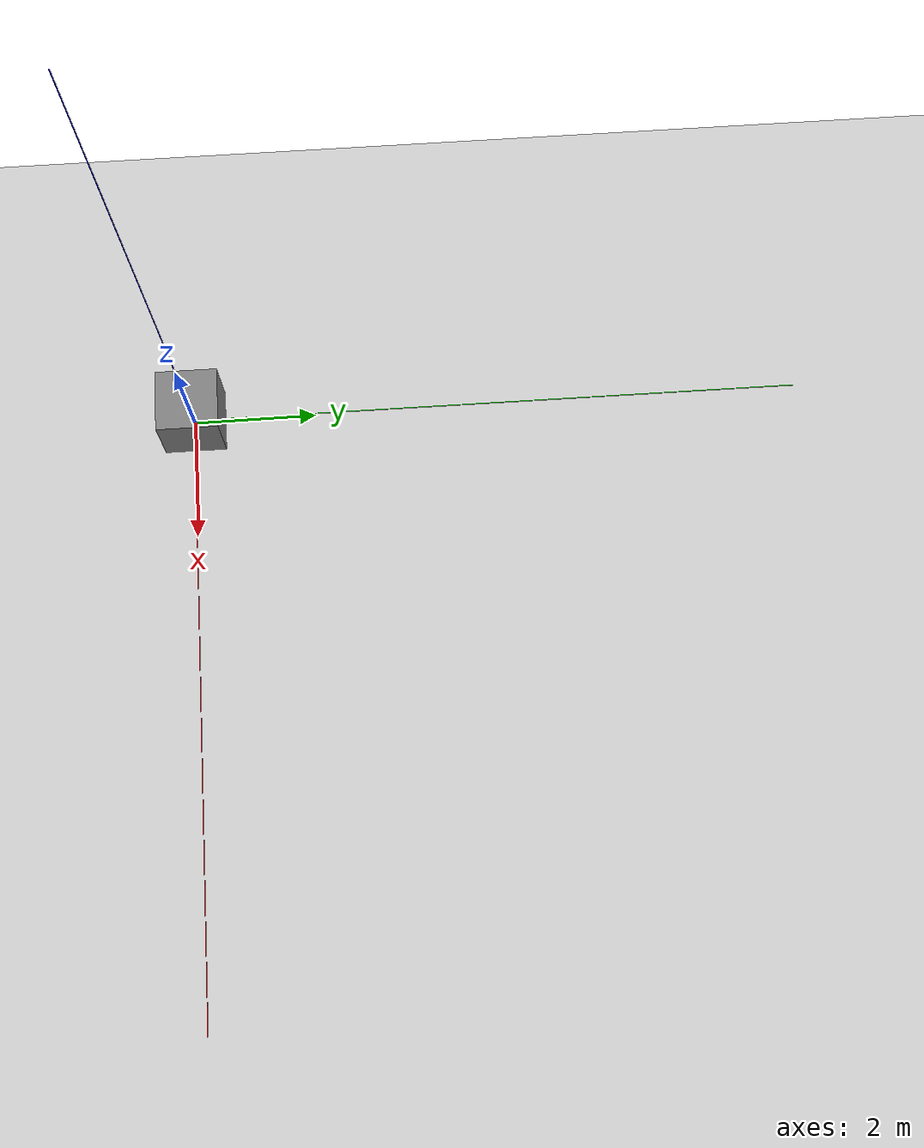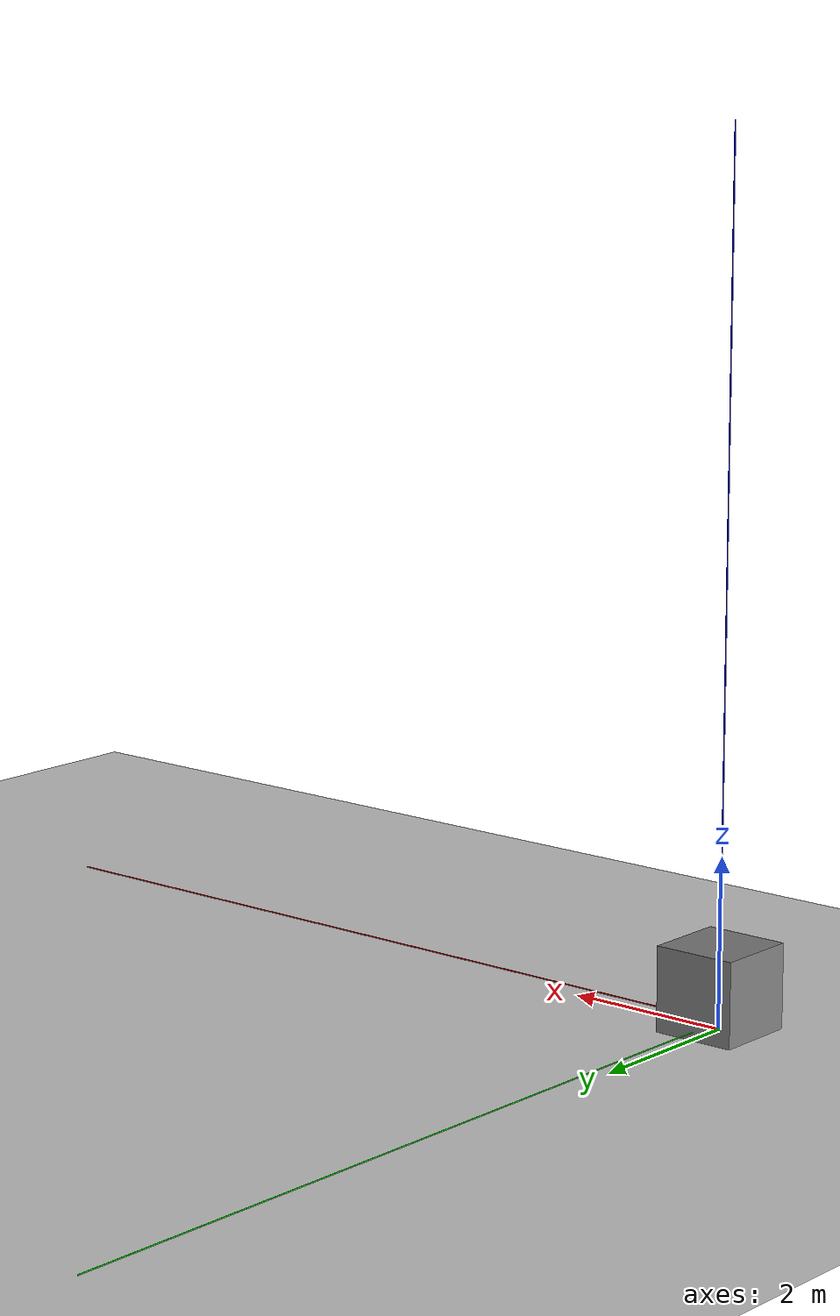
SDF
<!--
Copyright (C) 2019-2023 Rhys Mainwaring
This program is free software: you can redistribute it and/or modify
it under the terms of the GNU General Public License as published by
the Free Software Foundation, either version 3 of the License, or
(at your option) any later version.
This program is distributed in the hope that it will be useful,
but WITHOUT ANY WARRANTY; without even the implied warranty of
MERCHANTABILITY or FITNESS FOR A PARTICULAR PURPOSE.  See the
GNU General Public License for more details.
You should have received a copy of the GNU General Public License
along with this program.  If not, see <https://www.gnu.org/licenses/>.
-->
<?xml version="1.0" ?>
<sdf version="1.6">
  <world name="wind">

    <physics name="1ms" type="ignored">
      <max_step_size>0.001</max_step_size>
      <real_time_factor>1</real_time_factor>
    </physics>

    <plugin filename="gz-sim-physics-system"
        name="gz::sim::systems::Physics">
    </plugin>
    <plugin filename="gz-sim-sensors-system"
        name="gz::sim::systems::Sensors">
      <render_engine>ogre2</render_engine>
      <background_color>0.8 0.8 0.8</background_color>
    </plugin>
    <plugin filename="gz-sim-scene-broadcaster-system"
        name="gz::sim::systems::SceneBroadcaster">
    </plugin>
    <plugin filename="gz-sim-user-commands-system"
        name="gz::sim::systems::UserCommands">
    </plugin>
    <plugin filename="gz-sim-imu-system"
        name="gz::sim::systems::Imu">
    </plugin>
    <plugin filename="asv_sim2-anemometer-system"
      name="gz::sim::systems::Anemometer">
    </plugin>
    <plugin filename="asv_sim2-wind-system"
      name="gz::sim::systems::Wind">
      <topic>/wind</topic>
    </plugin>

    <scene>
      <ambient>1.0 1.0 1.0</ambient>
      <background>0.8 0.8 0.8</background>
      <sky></sky>
    </scene>

    <spherical_coordinates>
      <latitude_deg>51.56991349023042</latitude_deg>
      <longitude_deg>-4.033693921107272</longitude_deg>
      <elevation>10.0</elevation>
      <heading_deg>0</heading_deg>
      <surface_model>EARTH_WGS84</surface_model>
    </spherical_coordinates>

    <light type="directional" name="sun">
      <cast_shadows>true</cast_shadows>
      <pose>0 0 10 0 0 0</pose>
      <diffuse>0.8 0.8 0.8 1</diffuse>
      <specular>0.6 0.6 0.6 1</specular>
      <direction>-0.5 0.1 -0.9</direction>
    </light>

    <wind>
      <linear_velocity>0 -10 0</linear_velocity>
    </wind>

    <model name="axes">
      <static>1</static>
      <link name="link">
        <visual name="r">
          <cast_shadows>0</cast_shadows>
          <pose>5 0 0.1 0 0 0</pose>
          <geometry>
            <box>
              <size>10 0.01 0.01</size>
            </box>
          </geometry>
          <material>
            <ambient>1 0 0 1</ambient>
            <diffuse>1 0 0 1</diffuse>
            <emissive>1 0 0 1</emissive>
            <specular>0.5 0.5 0.5 1</specular>
          </material>
        </visual>
        <visual name="g">
          <cast_shadows>0</cast_shadows>
          <pose>0 5 0.1 0 0 0</pose>
          <geometry>
            <box>
              <size>0.01 10 0.01</size>
            </box>
          </geometry>
          <material>
            <ambient>0 1 0 1</ambient>
            <diffuse>0 1 0 1</diffuse>
            <emissive>0 1 0 1</emissive>
            <specular>0.5 0.5 0.5 1</specular>
          </material>
        </visual>
        <visual name="b">
          <cast_shadows>0</cast_shadows>
          <pose>0 0 5.1 0 0 0</pose>
          <geometry>
            <box>
              <size>0.01 0.01 10</size>
            </box>
          </geometry>
          <material>
            <ambient>0 0 1 1</ambient>
            <diffuse>0 0 1 1</diffuse>
            <emissive>0 0 1 1</emissive>
            <specular>0.5 0.5 0.5 1</specular>
          </material>
        </visual>
      </link>
    </model>

    <model name="ground_plane">
      <static>true</static>
      <link name="link">
        <collision name="collision">
          <geometry>
            <plane>
              <normal>0 0 1</normal>
              <size>100 100</size>
            </plane>
          </geometry>
        </collision>
        <visual name="visual">
          <geometry>
            <plane>
              <normal>0 0 1</normal>
              <size>100 100</size>
            </plane>
          </geometry>
          <material>
            <ambient>0.8 0.8 0.8 1</ambient>
            <diffuse>0.8 0.8 0.8 1</diffuse>
            <specular>0.8 0.8 0.8 1</specular>
          </material>
        </visual>
      </link>
    </model>

    <model name="anemometer">
      <pose>0 0 0.5 0 0 1.570796</pose>

      <link name="base_link">
        <inertial>
          <mass>10</mass>
          <inertia>
            <ixx>1.6</ixx>
            <ixy>0</ixy>
            <iyy>1.6</iyy>
            <iyz>0</iyz>
            <izz>1.6</izz>
          </inertia>
        </inertial>
        <collision name="base_collision">
          <geometry>
            <box>
              <size>1 1 1</size>
            </box>
          </geometry>
        </collision>
        <visual name="base_visual">
          <geometry>
            <box>
              <size>1 1 1</size>
            </box>
          </geometry>
          <material>
            <ambient>0.5 0.5 0.5 1.0</ambient>
            <diffuse>0.5 0.5 0.5 1.0</diffuse>
            <specular>0.1 0.1 0.1 1.0</specular>
          </material>
        </visual>
        <sensor name="anemometer" type="custom" gz:type="anemometer">
          <always_on>1</always_on>
          <update_rate>30</update_rate>
          <topic>anemometer</topic>
          <gz:anemometer>
          </gz:anemometer>
        </sensor>
      </link>

      <!--
        Velocity control

        gz topic -t "/model/anemometer/cmd_vel" -m gz.msgs.Twist -p "linear: {x: 5}"
      -->
      <plugin
        filename="gz-sim-velocity-control-system"
        name="gz::sim::systems::VelocityControl">
        <initial_linear>0 0 0</initial_linear>
        <initial_angular>0 0 0</initial_angular>
      </plugin>

    </model>

  </world>
</sdf>
